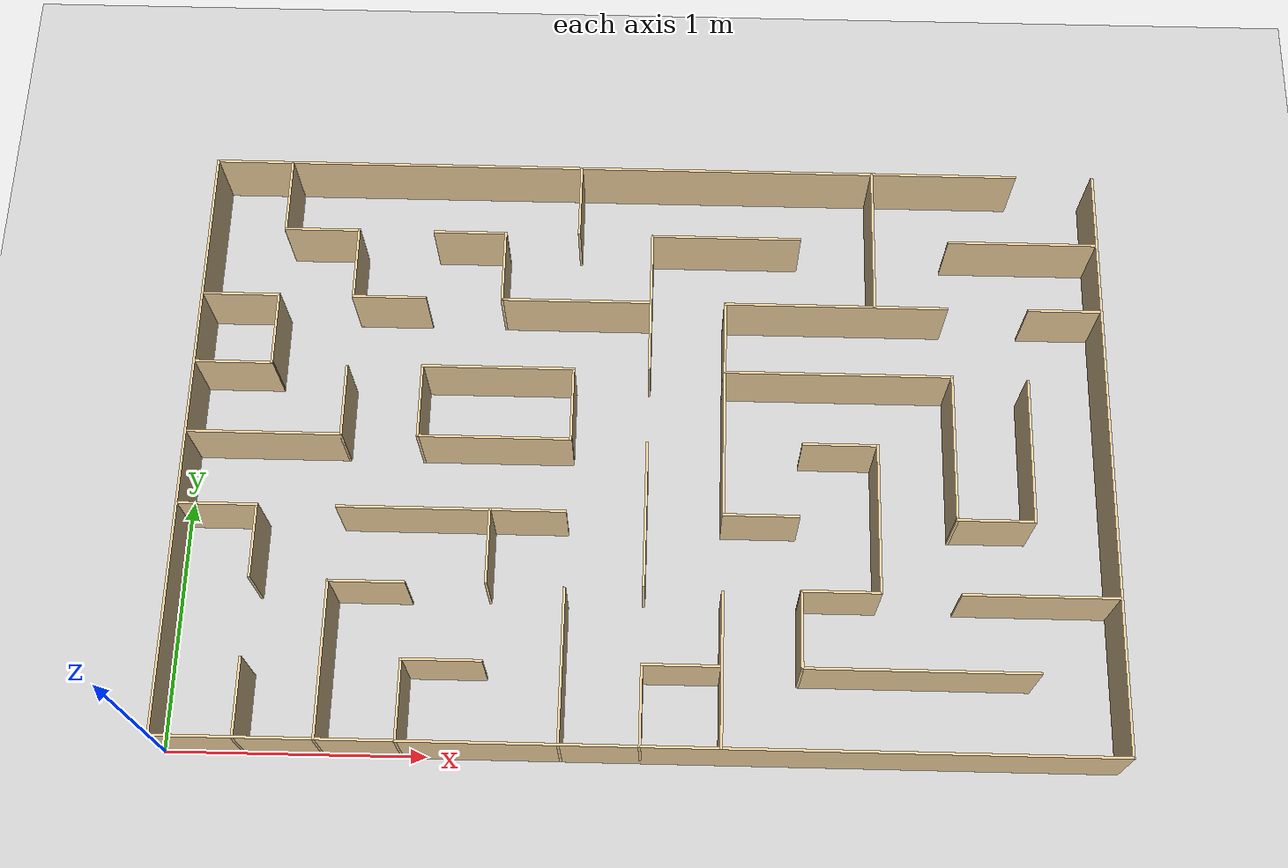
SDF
<?xml version="1.0" ?>
<sdf version="1.4">
  <world name="default">
    <scene>
      <ambient>0.5 0.5 0.5 1.0</ambient>
      <shadows>0</shadows>
    </scene>
    <include>
      <uri>model://ground_plane</uri>
    </include>
    <include>
      <uri>model://sun</uri>
    </include>

<model name='advanced_maze'>
    <pose frame=''>1.81 1.21 0 0 -0 0</pose>
    <link name='Wall_0'>
      <collision name='Wall_0_Collision'>
        <geometry>
          <box>
            <size>0.31 0.01 0.28</size>
          </box>
        </geometry>
        <pose frame=''>0 0 0.14 0 -0 0</pose>
      </collision>
      <visual name='Wall_0_Visual'>
        <pose frame=''>0 0 0.14 0 -0 0</pose>
        <geometry>
          <box>
            <size>0.31 0.01 0.28</size>
          </box>
        </geometry>
        <material>
          <script>
            <uri>file://media/materials/scripts/gazebo.material</uri>
            <name>Gazebo/Grey</name>
          </script>
          <ambient>0.921569 0.807843 0.615686 1</ambient>
        </material>
        <meta>
          <layer>0</layer>
        </meta>
      </visual>
      <pose frame=''>0.6 -0.75 0 0 0 -1.5708</pose>
    </link>
    <link name='Wall_101'>
      <collision name='Wall_101_Collision'>
        <geometry>
          <box>
            <size>0.32 0.01 0.28</size>
          </box>
        </geometry>
        <pose frame=''>0 0 0.14 0 -0 0</pose>
      </collision>
      <visual name='Wall_101_Visual'>
        <pose frame=''>0 0 0.14 0 -0 0</pose>
        <geometry>
          <box>
            <size>0.32 0.01 0.28</size>
          </box>
        </geometry>
        <material>
          <script>
            <uri>file://media/materials/scripts/gazebo.material</uri>
            <name>Gazebo/Grey</name>
          </script>
          <ambient>0.921569 0.807843 0.615686 1</ambient>
        </material>
        <meta>
          <layer>0</layer>
        </meta>
      </visual>
      <pose frame=''>-1.5 1.055 0 0 0 -1.5708</pose>
    </link>
    <link name='Wall_103'>
      <collision name='Wall_103_Collision'>
        <geometry>
          <box>
            <size>0.31 0.01 0.28</size>
          </box>
        </geometry>
        <pose frame=''>0 0 0.14 0 -0 0</pose>
      </collision>
      <visual name='Wall_103_Visual'>
        <pose frame=''>0 0 0.14 0 -0 0</pose>
        <geometry>
          <box>
            <size>0.31 0.01 0.28</size>
          </box>
        </geometry>
        <material>
          <script>
            <uri>file://media/materials/scripts/gazebo.material</uri>
            <name>Gazebo/Grey</name>
          </script>
          <ambient>0.921569 0.807843 0.615686 1</ambient>
        </material>
        <meta>
          <layer>0</layer>
        </meta>
      </visual>
      <pose frame=''>-1.35 0.9 0 0 -0 0</pose>
    </link>
    <link name='Wall_105'>
      <collision name='Wall_105_Collision'>
        <geometry>
          <box>
            <size>0.31 0.01 0.28</size>
          </box>
        </geometry>
        <pose frame=''>0 0 0.14 0 -0 0</pose>
      </collision>
      <visual name='Wall_105_Visual'>
        <pose frame=''>0 0 0.14 0 -0 0</pose>
        <geometry>
          <box>
            <size>0.31 0.01 0.28</size>
          </box>
        </geometry>
        <material>
          <script>
            <uri>file://media/materials/scripts/gazebo.material</uri>
            <name>Gazebo/Grey</name>
          </script>
          <ambient>0.921569 0.807843 0.615686 1</ambient>
        </material>
        <meta>
          <layer>0</layer>
        </meta>
      </visual>
      <pose frame=''>-1.2 0.75 0 0 0 -1.5708</pose>
    </link>
    <link name='Wall_108'>
      <collision name='Wall_108_Collision'>
        <geometry>
          <box>
            <size>0.3 0.01 0.28</size>
          </box>
        </geometry>
        <pose frame=''>0 0 0.14 0 -0 0</pose>
      </collision>
      <visual name='Wall_108_Visual'>
        <pose frame=''>0 0 0.14 0 -0 0</pose>
        <geometry>
          <box>
            <size>0.3 0.01 0.28</size>
          </box>
        </geometry>
        <material>
          <script>
            <uri>file://media/materials/scripts/gazebo.material</uri>
            <name>Gazebo/Grey</name>
          </script>
          <ambient>0.921569 0.807843 0.615686 1</ambient>
        </material>
        <meta>
          <layer>0</layer>
        </meta>
      </visual>
      <pose frame=''>-1.055 0.6 0 0 -0 0</pose>
    </link>
    <link name='Wall_11'>
      <collision name='Wall_11_Collision'>
        <geometry>
          <box>
            <size>0.61 0.01 0.28</size>
          </box>
        </geometry>
        <pose frame=''>0 0 0.14 0 -0 0</pose>
      </collision>
      <visual name='Wall_11_Visual'>
        <pose frame=''>0 0 0.14 0 -0 0</pose>
        <geometry>
          <box>
            <size>0.61 0.01 0.28</size>
          </box>
        </geometry>
        <material>
          <script>
            <uri>file://media/materials/scripts/gazebo.material</uri>
            <name>Gazebo/Grey</name>
          </script>
          <ambient>0.921569 0.807843 0.615686 1</ambient>
        </material>
        <meta>
          <layer>0</layer>
        </meta>
      </visual>
      <pose frame=''>0.9 -0.3 0 0 0 -1.5708</pose>
    </link>
    <link name='Wall_13'>
      <collision name='Wall_13_Collision'>
        <geometry>
          <box>
            <size>0.3 0.01 0.28</size>
          </box>
        </geometry>
        <pose frame=''>0 0 0.14 0 -0 0</pose>
      </collision>
      <visual name='Wall_13_Visual'>
        <pose frame=''>0 0 0.14 0 -0 0</pose>
        <geometry>
          <box>
            <size>0.3 0.01 0.28</size>
          </box>
        </geometry>
        <material>
          <script>
            <uri>file://media/materials/scripts/gazebo.material</uri>
            <name>Gazebo/Grey</name>
          </script>
          <ambient>0.921569 0.807843 0.615686 1</ambient>
        </material>
        <meta>
          <layer>0</layer>
        </meta>
      </visual>
      <pose frame=''>0.755 0 0 0 -0 0</pose>
    </link>
    <link name='Wall_15'>
      <collision name='Wall_15_Collision'>
        <geometry>
          <box>
            <size>0.61 0.01 0.28</size>
          </box>
        </geometry>
        <pose frame=''>0 0 0.14 0 -0 0</pose>
      </collision>
      <visual name='Wall_15_Visual'>
        <pose frame=''>0 0 0.14 0 -0 0</pose>
        <geometry>
          <box>
            <size>0.61 0.01 0.28</size>
          </box>
        </geometry>
        <material>
          <script>
            <uri>file://media/materials/scripts/gazebo.material</uri>
            <name>Gazebo/Grey</name>
          </script>
          <ambient>0.921569 0.807843 0.615686 1</ambient>
        </material>
        <meta>
          <layer>0</layer>
        </meta>
      </visual>
      <pose frame=''>1.2 0 0 0 -0 1.5708</pose>
    </link>
    <link name='Wall_17'>
      <collision name='Wall_17_Collision'>
        <geometry>
          <box>
            <size>0.91 0.01 0.28</size>
          </box>
        </geometry>
        <pose frame=''>0 0 0.14 0 -0 0</pose>
      </collision>
      <visual name='Wall_17_Visual'>
        <pose frame=''>0 0 0.14 0 -0 0</pose>
        <geometry>
          <box>
            <size>0.91 0.01 0.28</size>
          </box>
        </geometry>
        <material>
          <script>
            <uri>file://media/materials/scripts/gazebo.material</uri>
            <name>Gazebo/Grey</name>
          </script>
          <ambient>0.921569 0.807843 0.615686 1</ambient>
        </material>
        <meta>
          <layer>0</layer>
        </meta>
      </visual>
      <pose frame=''>0.75 0.3 0 0 -0 3.14159</pose>
    </link>
    <link name='Wall_19'>
      <collision name='Wall_19_Collision'>
        <geometry>
          <box>
            <size>0.91 0.01 0.28</size>
          </box>
        </geometry>
        <pose frame=''>0 0 0.14 0 -0 0</pose>
      </collision>
      <visual name='Wall_19_Visual'>
        <pose frame=''>0 0 0.14 0 -0 0</pose>
        <geometry>
          <box>
            <size>0.91 0.01 0.28</size>
          </box>
        </geometry>
        <material>
          <script>
            <uri>file://media/materials/scripts/gazebo.material</uri>
            <name>Gazebo/Grey</name>
          </script>
          <ambient>0.921569 0.807843 0.615686 1</ambient>
        </material>
        <meta>
          <layer>0</layer>
        </meta>
      </visual>
      <pose frame=''>0.3 0.15 0 0 0 -1.5708</pose>
    </link>
    <link name='Wall_2'>
      <collision name='Wall_2_Collision'>
        <geometry>
          <box>
            <size>0.9 0.01 0.28</size>
          </box>
        </geometry>
        <pose frame=''>0 0 0.14 0 -0 0</pose>
      </collision>
      <visual name='Wall_2_Visual'>
        <pose frame=''>0 0 0.14 0 -0 0</pose>
        <geometry>
          <box>
            <size>0.9 0.01 0.28</size>
          </box>
        </geometry>
        <material>
          <script>
            <uri>file://media/materials/scripts/gazebo.material</uri>
            <name>Gazebo/Grey</name>
          </script>
          <ambient>0.921569 0.807843 0.615686 1</ambient>
        </material>
        <meta>
          <layer>0</layer>
        </meta>
      </visual>
      <pose frame=''>1.045 -0.9 0 0 -0 0</pose>
    </link>
    <link name='Wall_21'>
      <collision name='Wall_21_Collision'>
        <geometry>
          <box>
            <size>0.3 0.01 0.28</size>
          </box>
        </geometry>
        <pose frame=''>0 0 0.14 0 -0 0</pose>
      </collision>
      <visual name='Wall_21_Visual'>
        <pose frame=''>0 0 0.14 0 -0 0</pose>
        <geometry>
          <box>
            <size>0.3 0.01 0.28</size>
          </box>
        </geometry>
        <material>
          <script>
            <uri>file://media/materials/scripts/gazebo.material</uri>
            <name>Gazebo/Grey</name>
          </script>
          <ambient>0.921569 0.807843 0.615686 1</ambient>
        </material>
        <meta>
          <layer>0</layer>
        </meta>
      </visual>
      <pose frame=''>0.445 -0.3 0 0 -0 0</pose>
    </link>
    <link name='Wall_23'>
      <collision name='Wall_23_Collision'>
        <geometry>
          <box>
            <size>0.9 0.01 0.28</size>
          </box>
        </geometry>
        <pose frame=''>0 0 0.14 0 -0 0</pose>
      </collision>
      <visual name='Wall_23_Visual'>
        <pose frame=''>0 0 0.14 0 -0 0</pose>
        <geometry>
          <box>
            <size>0.9 0.01 0.28</size>
          </box>
        </geometry>
        <material>
          <script>
            <uri>file://media/materials/scripts/gazebo.material</uri>
            <name>Gazebo/Grey</name>
          </script>
          <ambient>0.921569 0.807843 0.615686 1</ambient>
        </material>
        <meta>
          <layer>0</layer>
        </meta>
      </visual>
      <pose frame=''>0.745 0.6 0 0 -0 0</pose>
    </link>
    <link name='Wall_25'>
      <collision name='Wall_25_Collision'>
        <geometry>
          <box>
            <size>0.62 0.01 0.28</size>
          </box>
        </geometry>
        <pose frame=''>0 0 0.14 0 -0 0</pose>
      </collision>
      <visual name='Wall_25_Visual'>
        <pose frame=''>0 0 0.14 0 -0 0</pose>
        <geometry>
          <box>
            <size>0.62 0.01 0.28</size>
          </box>
        </geometry>
        <material>
          <script>
            <uri>file://media/materials/scripts/gazebo.material</uri>
            <name>Gazebo/Grey</name>
          </script>
          <ambient>0.921569 0.807843 0.615686 1</ambient>
        </material>
        <meta>
          <layer>0</layer>
        </meta>
      </visual>
      <pose frame=''>0.9 0.905 0 0 0 -1.5708</pose>
    </link>
    <link name='Wall_27'>
      <collision name='Wall_27_Collision'>
        <geometry>
          <box>
            <size>2.43 0.01 0.28</size>
          </box>
        </geometry>
        <pose frame=''>0 0 0.14 0 -0 0</pose>
      </collision>
      <visual name='Wall_27_Visual'>
        <pose frame=''>0 0 0.14 0 -0 0</pose>
        <geometry>
          <box>
            <size>2.43 0.01 0.28</size>
          </box>
        </geometry>
        <material>
          <script>
            <uri>file://media/materials/scripts/gazebo.material</uri>
            <name>Gazebo/Grey</name>
          </script>
          <ambient>0.921569 0.807843 0.615686 1</ambient>
        </material>
        <meta>
          <layer>0</layer>
        </meta>
      </visual>
      <pose frame=''>-1.81 0 0 0 -0 1.5708</pose>
    </link>
    <link name='Wall_29'>
      <collision name='Wall_29_Collision'>
        <geometry>
          <box>
            <size>0.61 0.01 0.28</size>
          </box>
        </geometry>
        <pose frame=''>0 0 0.14 0 -0 0</pose>
      </collision>
      <visual name='Wall_29_Visual'>
        <pose frame=''>0 0 0.14 0 -0 0</pose>
        <geometry>
          <box>
            <size>0.61 0.01 0.28</size>
          </box>
        </geometry>
        <material>
          <script>
            <uri>file://media/materials/scripts/gazebo.material</uri>
            <name>Gazebo/Grey</name>
          </script>
          <ambient>0.921569 0.807843 0.615686 1</ambient>
        </material>
        <meta>
          <layer>0</layer>
        </meta>
      </visual>
      <pose frame=''>1.51 0.9 0 0 -0 0</pose>
    </link>
    <link name='Wall_31'>
      <collision name='Wall_31_Collision'>
        <geometry>
          <box>
            <size>0.3 0.01 0.28</size>
          </box>
        </geometry>
        <pose frame=''>0 0 0.14 0 -0 0</pose>
      </collision>
      <visual name='Wall_31_Visual'>
        <pose frame=''>0 0 0.14 0 -0 0</pose>
        <geometry>
          <box>
            <size>0.3 0.01 0.28</size>
          </box>
        </geometry>
        <material>
          <script>
            <uri>file://media/materials/scripts/gazebo.material</uri>
            <name>Gazebo/Grey</name>
          </script>
          <ambient>0.921569 0.807843 0.615686 1</ambient>
        </material>
        <meta>
          <layer>0</layer>
        </meta>
      </visual>
      <pose frame=''>1.665 0.6 0 0 -0 0</pose>
    </link>
    <link name='Wall_34'>
      <collision name='Wall_34_Collision'>
        <geometry>
          <box>
            <size>0.61 0.01 0.28</size>
          </box>
        </geometry>
        <pose frame=''>0 0 0.14 0 -0 0</pose>
      </collision>
      <visual name='Wall_34_Visual'>
        <pose frame=''>0 0 0.14 0 -0 0</pose>
        <geometry>
          <box>
            <size>0.61 0.01 0.28</size>
          </box>
        </geometry>
        <material>
          <script>
            <uri>file://media/materials/scripts/gazebo.material</uri>
            <name>Gazebo/Grey</name>
          </script>
          <ambient>0.921569 0.807843 0.615686 1</ambient>
        </material>
        <meta>
          <layer>0</layer>
        </meta>
      </visual>
      <pose frame=''>1.51 -0.6 0 0 -0 0</pose>
    </link>
    <link name='Wall_36'>
      <collision name='Wall_36_Collision'>
        <geometry>
          <box>
            <size>0.61 0.01 0.28</size>
          </box>
        </geometry>
        <pose frame=''>0 0 0.14 0 -0 0</pose>
      </collision>
      <visual name='Wall_36_Visual'>
        <pose frame=''>0 0 0.14 0 -0 0</pose>
        <geometry>
          <box>
            <size>0.61 0.01 0.28</size>
          </box>
        </geometry>
        <material>
          <script>
            <uri>file://media/materials/scripts/gazebo.material</uri>
            <name>Gazebo/Grey</name>
          </script>
          <ambient>0.921569 0.807843 0.615686 1</ambient>
        </material>
        <meta>
          <layer>0</layer>
        </meta>
      </visual>
      <pose frame=''>0.3 -0.91 0 0 -0 1.5708</pose>
    </link>
    <link name='Wall_38'>
      <collision name='Wall_38_Collision'>
        <geometry>
          <box>
            <size>0.31 0.01 0.28</size>
          </box>
        </geometry>
        <pose frame=''>0 0 0.14 0 -0 0</pose>
      </collision>
      <visual name='Wall_38_Visual'>
        <pose frame=''>0 0 0.14 0 -0 0</pose>
        <geometry>
          <box>
            <size>0.31 0.01 0.28</size>
          </box>
        </geometry>
        <material>
          <script>
            <uri>file://media/materials/scripts/gazebo.material</uri>
            <name>Gazebo/Grey</name>
          </script>
          <ambient>0.921569 0.807843 0.615686 1</ambient>
        </material>
        <meta>
          <layer>0</layer>
        </meta>
      </visual>
      <pose frame=''>0.15 -0.9 0 0 -0 0</pose>
    </link>
    <link name='Wall_4'>
      <collision name='Wall_4_Collision'>
        <geometry>
          <box>
            <size>0.6 0.01 0.28</size>
          </box>
        </geometry>
        <pose frame=''>0 0 0.14 0 -0 0</pose>
      </collision>
      <visual name='Wall_4_Visual'>
        <pose frame=''>0 0 0.14 0 -0 0</pose>
        <geometry>
          <box>
            <size>0.6 0.01 0.28</size>
          </box>
        </geometry>
        <material>
          <script>
            <uri>file://media/materials/scripts/gazebo.material</uri>
            <name>Gazebo/Grey</name>
          </script>
          <ambient>0.921569 0.807843 0.615686 1</ambient>
        </material>
        <meta>
          <layer>0</layer>
        </meta>
      </visual>
      <pose frame=''>1.5 -0.005 0 0 0 -1.5708</pose>
    </link>
    <link name='Wall_40'>
      <collision name='Wall_40_Collision'>
        <geometry>
          <box>
            <size>0.32 0.01 0.28</size>
          </box>
        </geometry>
        <pose frame=''>0 0 0.14 0 -0 0</pose>
      </collision>
      <visual name='Wall_40_Visual'>
        <pose frame=''>0 0 0.14 0 -0 0</pose>
        <geometry>
          <box>
            <size>0.32 0.01 0.28</size>
          </box>
        </geometry>
        <material>
          <script>
            <uri>file://media/materials/scripts/gazebo.material</uri>
            <name>Gazebo/Grey</name>
          </script>
          <ambient>0.921569 0.807843 0.615686 1</ambient>
        </material>
        <meta>
          <layer>0</layer>
        </meta>
      </visual>
      <pose frame=''>0 -1.055 0 0 -0 1.5708</pose>
    </link>
    <link name='Wall_42'>
      <collision name='Wall_42_Collision'>
        <geometry>
          <box>
            <size>0.61 0.01 0.28</size>
          </box>
        </geometry>
        <pose frame=''>0 0 0.14 0 -0 0</pose>
      </collision>
      <visual name='Wall_42_Visual'>
        <pose frame=''>0 0 0.14 0 -0 0</pose>
        <geometry>
          <box>
            <size>0.61 0.01 0.28</size>
          </box>
        </geometry>
        <material>
          <script>
            <uri>file://media/materials/scripts/gazebo.material</uri>
            <name>Gazebo/Grey</name>
          </script>
          <ambient>0.921569 0.807843 0.615686 1</ambient>
        </material>
        <meta>
          <layer>0</layer>
        </meta>
      </visual>
      <pose frame=''>-0.3 -0.91 0 0 -0 1.5708</pose>
    </link>
    <link name='Wall_44'>
      <collision name='Wall_44_Collision'>
        <geometry>
          <box>
            <size>0.31 0.01 0.28</size>
          </box>
        </geometry>
        <pose frame=''>0 0 0.14 0 -0 0</pose>
      </collision>
      <visual name='Wall_44_Visual'>
        <pose frame=''>0 0 0.14 0 -0 0</pose>
        <geometry>
          <box>
            <size>0.31 0.01 0.28</size>
          </box>
        </geometry>
        <material>
          <script>
            <uri>file://media/materials/scripts/gazebo.material</uri>
            <name>Gazebo/Grey</name>
          </script>
          <ambient>0.921569 0.807843 0.615686 1</ambient>
        </material>
        <meta>
          <layer>0</layer>
        </meta>
      </visual>
      <pose frame=''>-0.75 -0.9 0 0 -0 0</pose>
    </link>
    <link name='Wall_46'>
      <collision name='Wall_46_Collision'>
        <geometry>
          <box>
            <size>0.32 0.01 0.28</size>
          </box>
        </geometry>
        <pose frame=''>0 0 0.14 0 -0 0</pose>
      </collision>
      <visual name='Wall_46_Visual'>
        <pose frame=''>0 0 0.14 0 -0 0</pose>
        <geometry>
          <box>
            <size>0.32 0.01 0.28</size>
          </box>
        </geometry>
        <material>
          <script>
            <uri>file://media/materials/scripts/gazebo.material</uri>
            <name>Gazebo/Grey</name>
          </script>
          <ambient>0.921569 0.807843 0.615686 1</ambient>
        </material>
        <meta>
          <layer>0</layer>
        </meta>
      </visual>
      <pose frame=''>-0.9 -1.055 0 0 -0 1.5708</pose>
    </link>
    <link name='Wall_48'>
      <collision name='Wall_48_Collision'>
        <geometry>
          <box>
            <size>0.3 0.01 0.28</size>
          </box>
        </geometry>
        <pose frame=''>0 0 0.14 0 -0 0</pose>
      </collision>
      <visual name='Wall_48_Visual'>
        <pose frame=''>0 0 0.14 0 -0 0</pose>
        <geometry>
          <box>
            <size>0.3 0.01 0.28</size>
          </box>
        </geometry>
        <material>
          <script>
            <uri>file://media/materials/scripts/gazebo.material</uri>
            <name>Gazebo/Grey</name>
          </script>
          <ambient>0.921569 0.807843 0.615686 1</ambient>
        </material>
        <meta>
          <layer>0</layer>
        </meta>
      </visual>
      <pose frame=''>-1.055 -0.6 0 0 -0 0</pose>
    </link>
    <link name='Wall_50'>
      <collision name='Wall_50_Collision'>
        <geometry>
          <box>
            <size>0.62 0.01 0.28</size>
          </box>
        </geometry>
        <pose frame=''>0 0 0.14 0 -0 0</pose>
      </collision>
      <visual name='Wall_50_Visual'>
        <pose frame=''>0 0 0.14 0 -0 0</pose>
        <geometry>
          <box>
            <size>0.62 0.01 0.28</size>
          </box>
        </geometry>
        <material>
          <script>
            <uri>file://media/materials/scripts/gazebo.material</uri>
            <name>Gazebo/Grey</name>
          </script>
          <ambient>0.921569 0.807843 0.615686 1</ambient>
        </material>
        <meta>
          <layer>0</layer>
        </meta>
      </visual>
      <pose frame=''>-1.2 -0.905 0 0 -0 1.5708</pose>
    </link>
    <link name='Wall_52'>
      <collision name='Wall_52_Collision'>
        <geometry>
          <box>
            <size>0.31 0.01 0.28</size>
          </box>
        </geometry>
        <pose frame=''>0 0 0.14 0 -0 0</pose>
      </collision>
      <visual name='Wall_52_Visual'>
        <pose frame=''>0 0 0.14 0 -0 0</pose>
        <geometry>
          <box>
            <size>0.31 0.01 0.28</size>
          </box>
        </geometry>
        <material>
          <script>
            <uri>file://media/materials/scripts/gazebo.material</uri>
            <name>Gazebo/Grey</name>
          </script>
          <ambient>0.921569 0.807843 0.615686 1</ambient>
        </material>
        <meta>
          <layer>0</layer>
        </meta>
      </visual>
      <pose frame=''>-1.5 -1.06 0 0 -0 1.5708</pose>
    </link>
    <link name='Wall_54'>
      <collision name='Wall_54_Collision'>
        <geometry>
          <box>
            <size>3.63 0.01 0.28</size>
          </box>
        </geometry>
        <pose frame=''>0 0 0.14 0 -0 0</pose>
      </collision>
      <visual name='Wall_54_Visual'>
        <pose frame=''>0 0 0.14 0 -0 0</pose>
        <geometry>
          <box>
            <size>3.63 0.01 0.28</size>
          </box>
        </geometry>
        <material>
          <script>
            <uri>file://media/materials/scripts/gazebo.material</uri>
            <name>Gazebo/Grey</name>
          </script>
          <ambient>0.921569 0.807843 0.615686 1</ambient>
        </material>
        <meta>
          <layer>0</layer>
        </meta>
      </visual>
      <pose frame=''>0 -1.21 0 0 -0 3.14159</pose>
    </link>
    <link name='Wall_56'>
      <collision name='Wall_56_Collision'>
        <geometry>
          <box>
            <size>2.43 0.01 0.28</size>
          </box>
        </geometry>
        <pose frame=''>0 0 0.14 0 -0 0</pose>
      </collision>
      <visual name='Wall_56_Visual'>
        <pose frame=''>0 0 0.14 0 -0 0</pose>
        <geometry>
          <box>
            <size>2.43 0.01 0.28</size>
          </box>
        </geometry>
        <material>
          <script>
            <uri>file://media/materials/scripts/gazebo.material</uri>
            <name>Gazebo/Grey</name>
          </script>
          <ambient>0.921569 0.807843 0.615686 1</ambient>
        </material>
        <meta>
          <layer>0</layer>
        </meta>
      </visual>
      <pose frame=''>1.81 0 0 0 0 -1.5708</pose>
    </link>
    <link name='Wall_58'>
      <collision name='Wall_58_Collision'>
        <geometry>
          <box>
            <size>0.6 0.01 0.28</size>
          </box>
        </geometry>
        <pose frame=''>0 0 0.14 0 -0 0</pose>
      </collision>
      <visual name='Wall_58_Visual'>
        <pose frame=''>0 0 0.14 0 -0 0</pose>
        <geometry>
          <box>
            <size>0.6 0.01 0.28</size>
          </box>
        </geometry>
        <material>
          <script>
            <uri>file://media/materials/scripts/gazebo.material</uri>
            <name>Gazebo/Grey</name>
          </script>
          <ambient>0.921569 0.807843 0.615686 1</ambient>
        </material>
        <meta>
          <layer>0</layer>
        </meta>
      </visual>
      <pose frame=''>0 0.605 0 0 0 -1.5708</pose>
    </link>
    <link name='Wall_60'>
      <collision name='Wall_60_Collision'>
        <geometry>
          <box>
            <size>0.61 0.01 0.28</size>
          </box>
        </geometry>
        <pose frame=''>0 0 0.14 0 -0 0</pose>
      </collision>
      <visual name='Wall_60_Visual'>
        <pose frame=''>0 0 0.14 0 -0 0</pose>
        <geometry>
          <box>
            <size>0.61 0.01 0.28</size>
          </box>
        </geometry>
        <material>
          <script>
            <uri>file://media/materials/scripts/gazebo.material</uri>
            <name>Gazebo/Grey</name>
          </script>
          <ambient>0.921569 0.807843 0.615686 1</ambient>
        </material>
        <meta>
          <layer>0</layer>
        </meta>
      </visual>
      <pose frame=''>-0.3 0.6 0 0 -0 3.14159</pose>
    </link>
    <link name='Wall_62'>
      <collision name='Wall_62_Collision'>
        <geometry>
          <box>
            <size>0.31 0.01 0.28</size>
          </box>
        </geometry>
        <pose frame=''>0 0 0.14 0 -0 0</pose>
      </collision>
      <visual name='Wall_62_Visual'>
        <pose frame=''>0 0 0.14 0 -0 0</pose>
        <geometry>
          <box>
            <size>0.31 0.01 0.28</size>
          </box>
        </geometry>
        <material>
          <script>
            <uri>file://media/materials/scripts/gazebo.material</uri>
            <name>Gazebo/Grey</name>
          </script>
          <ambient>0.921569 0.807843 0.615686 1</ambient>
        </material>
        <meta>
          <layer>0</layer>
        </meta>
      </visual>
      <pose frame=''>-0.6 0.75 0 0 -0 1.5708</pose>
    </link>
    <link name='Wall_64'>
      <collision name='Wall_64_Collision'>
        <geometry>
          <box>
            <size>0.3 0.01 0.28</size>
          </box>
        </geometry>
        <pose frame=''>0 0 0.14 0 -0 0</pose>
      </collision>
      <visual name='Wall_64_Visual'>
        <pose frame=''>0 0 0.14 0 -0 0</pose>
        <geometry>
          <box>
            <size>0.3 0.01 0.28</size>
          </box>
        </geometry>
        <material>
          <script>
            <uri>file://media/materials/scripts/gazebo.material</uri>
            <name>Gazebo/Grey</name>
          </script>
          <ambient>0.921569 0.807843 0.615686 1</ambient>
        </material>
        <meta>
          <layer>0</layer>
        </meta>
      </visual>
      <pose frame=''>-0.745 0.9 0 0 -0 3.14159</pose>
    </link>
    <link name='Wall_66'>
      <collision name='Wall_66_Collision'>
        <geometry>
          <box>
            <size>0.61 0.01 0.28</size>
          </box>
        </geometry>
        <pose frame=''>0 0 0.14 0 -0 0</pose>
      </collision>
      <visual name='Wall_66_Visual'>
        <pose frame=''>0 0 0.14 0 -0 0</pose>
        <geometry>
          <box>
            <size>0.61 0.01 0.28</size>
          </box>
        </geometry>
        <material>
          <script>
            <uri>file://media/materials/scripts/gazebo.material</uri>
            <name>Gazebo/Grey</name>
          </script>
          <ambient>0.921569 0.807843 0.615686 1</ambient>
        </material>
        <meta>
          <layer>0</layer>
        </meta>
      </visual>
      <pose frame=''>-0.6 0.3 0 0 -0 0</pose>
    </link>
    <link name='Wall_68'>
      <collision name='Wall_68_Collision'>
        <geometry>
          <box>
            <size>0.3 0.01 0.28</size>
          </box>
        </geometry>
        <pose frame=''>0 0 0.14 0 -0 0</pose>
      </collision>
      <visual name='Wall_68_Visual'>
        <pose frame=''>0 0 0.14 0 -0 0</pose>
        <geometry>
          <box>
            <size>0.3 0.01 0.28</size>
          </box>
        </geometry>
        <material>
          <script>
            <uri>file://media/materials/scripts/gazebo.material</uri>
            <name>Gazebo/Grey</name>
          </script>
          <ambient>0.921569 0.807843 0.615686 1</ambient>
        </material>
        <meta>
          <layer>0</layer>
        </meta>
      </visual>
      <pose frame=''>-0.6 -0.445 0 0 0 -1.5708</pose>
    </link>
    <link name='Wall_7'>
      <collision name='Wall_7_Collision'>
        <geometry>
          <box>
            <size>0.31 0.01 0.28</size>
          </box>
        </geometry>
        <pose frame=''>0 0 0.14 0 -0 0</pose>
      </collision>
      <visual name='Wall_7_Visual'>
        <pose frame=''>0 0 0.14 0 -0 0</pose>
        <geometry>
          <box>
            <size>0.31 0.01 0.28</size>
          </box>
        </geometry>
        <material>
          <script>
            <uri>file://media/materials/scripts/gazebo.material</uri>
            <name>Gazebo/Grey</name>
          </script>
          <ambient>0.921569 0.807843 0.615686 1</ambient>
        </material>
        <meta>
          <layer>0</layer>
        </meta>
      </visual>
      <pose frame=''>1.35 -0.3 0 0 -0 3.14159</pose>
    </link>
    <link name='Wall_70'>
      <collision name='Wall_70_Collision'>
        <geometry>
          <box>
            <size>0.89 0.01 0.28</size>
          </box>
        </geometry>
        <pose frame=''>0 0 0.14 0 -0 0</pose>
      </collision>
      <visual name='Wall_70_Visual'>
        <pose frame=''>0 0 0.14 0 -0 0</pose>
        <geometry>
          <box>
            <size>0.89 0.01 0.28</size>
          </box>
        </geometry>
        <material>
          <script>
            <uri>file://media/materials/scripts/gazebo.material</uri>
            <name>Gazebo/Grey</name>
          </script>
          <ambient>0.921569 0.807843 0.615686 1</ambient>
        </material>
        <meta>
          <layer>0</layer>
        </meta>
      </visual>
      <pose frame=''>-0.75 -0.3 0 0 -0 0</pose>
    </link>
    <link name='Wall_72'>
      <collision name='Wall_72_Collision'>
        <geometry>
          <box>
            <size>0.31 0.01 0.28</size>
          </box>
        </geometry>
        <pose frame=''>0 0 0.14 0 -0 0</pose>
      </collision>
      <visual name='Wall_72_Visual'>
        <pose frame=''>0 0 0.14 0 -0 0</pose>
        <geometry>
          <box>
            <size>0.31 0.01 0.28</size>
          </box>
        </geometry>
        <material>
          <script>
            <uri>file://media/materials/scripts/gazebo.material</uri>
            <name>Gazebo/Grey</name>
          </script>
          <ambient>0.921569 0.807843 0.615686 1</ambient>
        </material>
        <meta>
          <layer>0</layer>
        </meta>
      </visual>
      <pose frame=''>-0.9 0.15 0 0 -0 1.5708</pose>
    </link>
    <link name='Wall_74'>
      <collision name='Wall_74_Collision'>
        <geometry>
          <box>
            <size>0.61 0.01 0.28</size>
          </box>
        </geometry>
        <pose frame=''>0 0 0.14 0 -0 0</pose>
      </collision>
      <visual name='Wall_74_Visual'>
        <pose frame=''>0 0 0.14 0 -0 0</pose>
        <geometry>
          <box>
            <size>0.61 0.01 0.28</size>
          </box>
        </geometry>
        <material>
          <script>
            <uri>file://media/materials/scripts/gazebo.material</uri>
            <name>Gazebo/Grey</name>
          </script>
          <ambient>0.921569 0.807843 0.615686 1</ambient>
        </material>
        <meta>
          <layer>0</layer>
        </meta>
      </visual>
      <pose frame=''>-0.6 0 0 0 -0 3.14159</pose>
    </link>
    <link name='Wall_76'>
      <collision name='Wall_76_Collision'>
        <geometry>
          <box>
            <size>0.31 0.01 0.28</size>
          </box>
        </geometry>
        <pose frame=''>0 0 0.14 0 -0 0</pose>
      </collision>
      <visual name='Wall_76_Visual'>
        <pose frame=''>0 0 0.14 0 -0 0</pose>
        <geometry>
          <box>
            <size>0.31 0.01 0.28</size>
          </box>
        </geometry>
        <material>
          <script>
            <uri>file://media/materials/scripts/gazebo.material</uri>
            <name>Gazebo/Grey</name>
          </script>
          <ambient>0.921569 0.807843 0.615686 1</ambient>
        </material>
        <meta>
          <layer>0</layer>
        </meta>
      </visual>
      <pose frame=''>-0.3 0.15 0 0 0 -1.5708</pose>
    </link>
    <link name='Wall_78'>
      <collision name='Wall_78_Collision'>
        <geometry>
          <box>
            <size>0.61 0.01 0.28</size>
          </box>
        </geometry>
        <pose frame=''>0 0 0.14 0 -0 0</pose>
      </collision>
      <visual name='Wall_78_Visual'>
        <pose frame=''>0 0 0.14 0 -0 0</pose>
        <geometry>
          <box>
            <size>0.61 0.01 0.28</size>
          </box>
        </geometry>
        <material>
          <script>
            <uri>file://media/materials/scripts/gazebo.material</uri>
            <name>Gazebo/Grey</name>
          </script>
          <ambient>0.921569 0.807843 0.615686 1</ambient>
        </material>
        <meta>
          <layer>0</layer>
        </meta>
      </visual>
      <pose frame=''>0.3 0.9 0 0 -0 3.14159</pose>
    </link>
    <link name='Wall_80'>
      <collision name='Wall_80_Collision'>
        <geometry>
          <box>
            <size>0.31 0.01 0.28</size>
          </box>
        </geometry>
        <pose frame=''>0 0 0.14 0 -0 0</pose>
      </collision>
      <visual name='Wall_80_Visual'>
        <pose frame=''>0 0 0.14 0 -0 0</pose>
        <geometry>
          <box>
            <size>0.31 0.01 0.28</size>
          </box>
        </geometry>
        <material>
          <script>
            <uri>file://media/materials/scripts/gazebo.material</uri>
            <name>Gazebo/Grey</name>
          </script>
          <ambient>0.921569 0.807843 0.615686 1</ambient>
        </material>
        <meta>
          <layer>0</layer>
        </meta>
      </visual>
      <pose frame=''>-0.3 1.06 0 0 0 -1.5708</pose>
    </link>
    <link name='Wall_82'>
      <collision name='Wall_82_Collision'>
        <geometry>
          <box>
            <size>0.59 0.01 0.28</size>
          </box>
        </geometry>
        <pose frame=''>0 0 0.14 0 -0 0</pose>
      </collision>
      <visual name='Wall_82_Visual'>
        <pose frame=''>0 0 0.14 0 -0 0</pose>
        <geometry>
          <box>
            <size>0.59 0.01 0.28</size>
          </box>
        </geometry>
        <material>
          <script>
            <uri>file://media/materials/scripts/gazebo.material</uri>
            <name>Gazebo/Grey</name>
          </script>
          <ambient>0.921569 0.807843 0.615686 1</ambient>
        </material>
        <meta>
          <layer>0</layer>
        </meta>
      </visual>
      <pose frame=''>0 -0.3 0 0 0 -1.5708</pose>
    </link>
    <link name='Wall_84'>
      <collision name='Wall_84_Collision'>
        <geometry>
          <box>
            <size>3.31 0.01 0.28</size>
          </box>
        </geometry>
        <pose frame=''>0 0 0.14 0 -0 0</pose>
      </collision>
      <visual name='Wall_84_Visual'>
        <pose frame=''>0 0 0.14 0 -0 0</pose>
        <geometry>
          <box>
            <size>3.31 0.01 0.28</size>
          </box>
        </geometry>
        <material>
          <script>
            <uri>file://media/materials/scripts/gazebo.material</uri>
            <name>Gazebo/Grey</name>
          </script>
          <ambient>0.921569 0.807843 0.615686 1</ambient>
        </material>
        <meta>
          <layer>0</layer>
        </meta>
      </visual>
      <pose frame=''>-0.16 1.21 0 0 -0 0</pose>
    </link>
    <link name='Wall_86'>
      <collision name='Wall_86_Collision'>
        <geometry>
          <box>
            <size>0.32 0.01 0.28</size>
          </box>
        </geometry>
        <pose frame=''>0 0 0.14 0 -0 0</pose>
      </collision>
      <visual name='Wall_86_Visual'>
        <pose frame=''>0 0 0.14 0 -0 0</pose>
        <geometry>
          <box>
            <size>0.32 0.01 0.28</size>
          </box>
        </geometry>
        <material>
          <script>
            <uri>file://media/materials/scripts/gazebo.material</uri>
            <name>Gazebo/Grey</name>
          </script>
          <ambient>0.921569 0.807843 0.615686 1</ambient>
        </material>
        <meta>
          <layer>0</layer>
        </meta>
      </visual>
      <pose frame=''>-1.655 0.6 0 0 -0 0</pose>
    </link>
    <link name='Wall_88'>
      <collision name='Wall_88_Collision'>
        <geometry>
          <box>
            <size>0.31 0.01 0.28</size>
          </box>
        </geometry>
        <pose frame=''>0 0 0.14 0 -0 0</pose>
      </collision>
      <visual name='Wall_88_Visual'>
        <pose frame=''>0 0 0.14 0 -0 0</pose>
        <geometry>
          <box>
            <size>0.31 0.01 0.28</size>
          </box>
        </geometry>
        <material>
          <script>
            <uri>file://media/materials/scripts/gazebo.material</uri>
            <name>Gazebo/Grey</name>
          </script>
          <ambient>0.921569 0.807843 0.615686 1</ambient>
        </material>
        <meta>
          <layer>0</layer>
        </meta>
      </visual>
      <pose frame=''>-1.5 0.45 0 0 0 -1.5708</pose>
    </link>
    <link name='Wall_9'>
      <collision name='Wall_9_Collision'>
        <geometry>
          <box>
            <size>0.31 0.01 0.28</size>
          </box>
        </geometry>
        <pose frame=''>0 0 0.14 0 -0 0</pose>
      </collision>
      <visual name='Wall_9_Visual'>
        <pose frame=''>0 0 0.14 0 -0 0</pose>
        <geometry>
          <box>
            <size>0.31 0.01 0.28</size>
          </box>
        </geometry>
        <material>
          <script>
            <uri>file://media/materials/scripts/gazebo.material</uri>
            <name>Gazebo/Grey</name>
          </script>
          <ambient>0.921569 0.807843 0.615686 1</ambient>
        </material>
        <meta>
          <layer>0</layer>
        </meta>
      </visual>
      <pose frame=''>0.75 -0.6 0 0 -0 3.14159</pose>
    </link>
    <link name='Wall_90'>
      <collision name='Wall_90_Collision'>
        <geometry>
          <box>
            <size>0.3 0.01 0.28</size>
          </box>
        </geometry>
        <pose frame=''>0 0 0.14 0 -0 0</pose>
      </collision>
      <visual name='Wall_90_Visual'>
        <pose frame=''>0 0 0.14 0 -0 0</pose>
        <geometry>
          <box>
            <size>0.3 0.01 0.28</size>
          </box>
        </geometry>
        <material>
          <script>
            <uri>file://media/materials/scripts/gazebo.material</uri>
            <name>Gazebo/Grey</name>
          </script>
          <ambient>0.921569 0.807843 0.615686 1</ambient>
        </material>
        <meta>
          <layer>0</layer>
        </meta>
      </visual>
      <pose frame=''>-1.2 0.145 0 0 -0 1.5708</pose>
    </link>
    <link name='Wall_92'>
      <collision name='Wall_92_Collision'>
        <geometry>
          <box>
            <size>0.62 0.01 0.28</size>
          </box>
        </geometry>
        <pose frame=''>0 0 0.14 0 -0 0</pose>
      </collision>
      <visual name='Wall_92_Visual'>
        <pose frame=''>0 0 0.14 0 -0 0</pose>
        <geometry>
          <box>
            <size>0.62 0.01 0.28</size>
          </box>
        </geometry>
        <material>
          <script>
            <uri>file://media/materials/scripts/gazebo.material</uri>
            <name>Gazebo/Grey</name>
          </script>
          <ambient>0.921569 0.807843 0.615686 1</ambient>
        </material>
        <meta>
          <layer>0</layer>
        </meta>
      </visual>
      <pose frame=''>-1.505 0 0 0 -0 0</pose>
    </link>
    <link name='Wall_94'>
      <collision name='Wall_94_Collision'>
        <geometry>
          <box>
            <size>0.3 0.01 0.28</size>
          </box>
        </geometry>
        <pose frame=''>0 0 0.14 0 -0 0</pose>
      </collision>
      <visual name='Wall_94_Visual'>
        <pose frame=''>0 0 0.14 0 -0 0</pose>
        <geometry>
          <box>
            <size>0.3 0.01 0.28</size>
          </box>
        </geometry>
        <material>
          <script>
            <uri>file://media/materials/scripts/gazebo.material</uri>
            <name>Gazebo/Grey</name>
          </script>
          <ambient>0.921569 0.807843 0.615686 1</ambient>
        </material>
        <meta>
          <layer>0</layer>
        </meta>
      </visual>
      <pose frame=''>-1.5 -0.445 0 0 0 -1.5708</pose>
    </link>
    <link name='Wall_96'>
      <collision name='Wall_96_Collision'>
        <geometry>
          <box>
            <size>0.32 0.01 0.28</size>
          </box>
        </geometry>
        <pose frame=''>0 0 0.14 0 -0 0</pose>
      </collision>
      <visual name='Wall_96_Visual'>
        <pose frame=''>0 0 0.14 0 -0 0</pose>
        <geometry>
          <box>
            <size>0.32 0.01 0.28</size>
          </box>
        </geometry>
        <material>
          <script>
            <uri>file://media/materials/scripts/gazebo.material</uri>
            <name>Gazebo/Grey</name>
          </script>
          <ambient>0.921569 0.807843 0.615686 1</ambient>
        </material>
        <meta>
          <layer>0</layer>
        </meta>
      </visual>
      <pose frame=''>-1.655 -0.3 0 0 -0 0</pose>
    </link>
    <link name='Wall_99'>
      <collision name='Wall_99_Collision'>
        <geometry>
          <box>
            <size>0.32 0.01 0.28</size>
          </box>
        </geometry>
        <pose frame=''>0 0 0.14 0 -0 0</pose>
      </collision>
      <visual name='Wall_99_Visual'>
        <pose frame=''>0 0 0.14 0 -0 0</pose>
        <geometry>
          <box>
            <size>0.32 0.01 0.28</size>
          </box>
        </geometry>
        <material>
          <script>
            <uri>file://media/materials/scripts/gazebo.material</uri>
            <name>Gazebo/Grey</name>
          </script>
          <ambient>0.921569 0.807843 0.615686 1</ambient>
        </material>
        <meta>
          <layer>0</layer>
        </meta>
      </visual>
      <pose frame=''>-1.655 0.3 0 0 -0 3.14159</pose>
    </link>
    <static>1</static>
  </model>

  </world>
</sdf>
